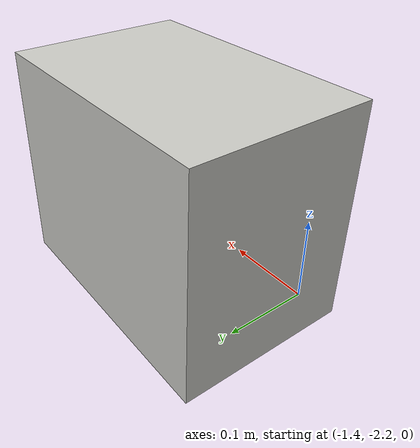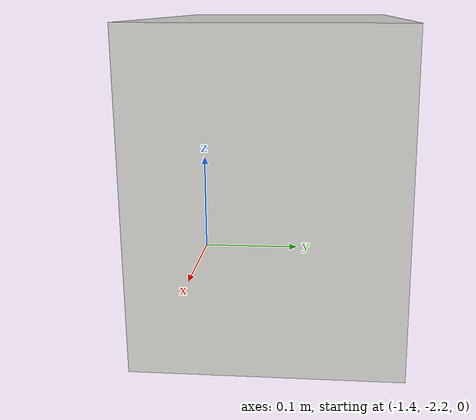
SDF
<?xml version='1.0'?>
<sdf version='1.6'>
  <model name='box'>
    <pose frame=''>-1.29 -2.11 0 0 -0 0</pose>
    <link name='Wall_7'>
      <collision name='Wall_7_Collision'>
        <geometry>
          <box>
            <size>0.3 0.2 0.25</size>
          </box>
        </geometry>
        <pose frame=''>0 0 0.125 0 -0 0</pose>
      </collision>
      <visual name='Wall_7_Visual'>
        <pose frame=''>0 0 0.125 0 -0 0</pose>
        <geometry>
          <box>
            <size>0.3 0.2 0.25</size>
          </box>
        </geometry>
        <material>
          <script>
            <uri>file://media/materials/scripts/gazebo.material</uri>
            <name>Gazebo/CeilingTiled</name>
          </script>
          <ambient>1 1 1 1</ambient>
        </material>
        <meta>
          <layer>0</layer>
        </meta>
      </visual>
      <pose frame=''>0 0 0 0 -0 0</pose>
    </link>
    <static>1</static>
  </model>
</sdf>
